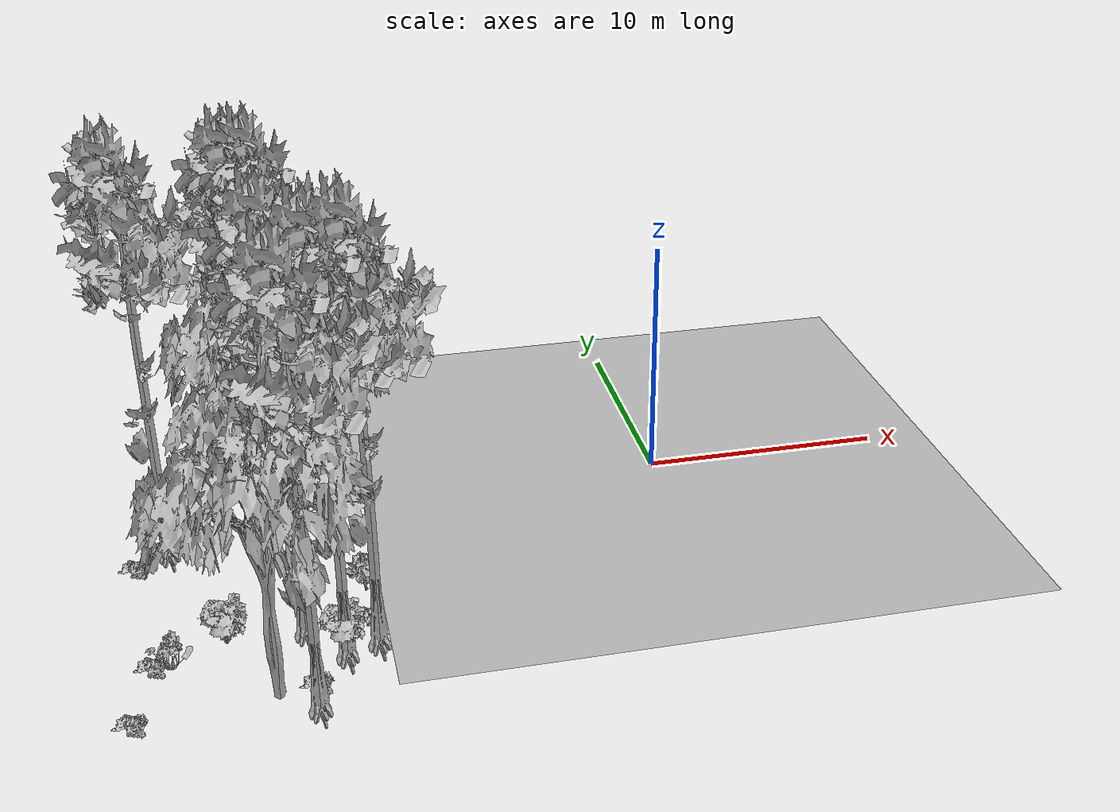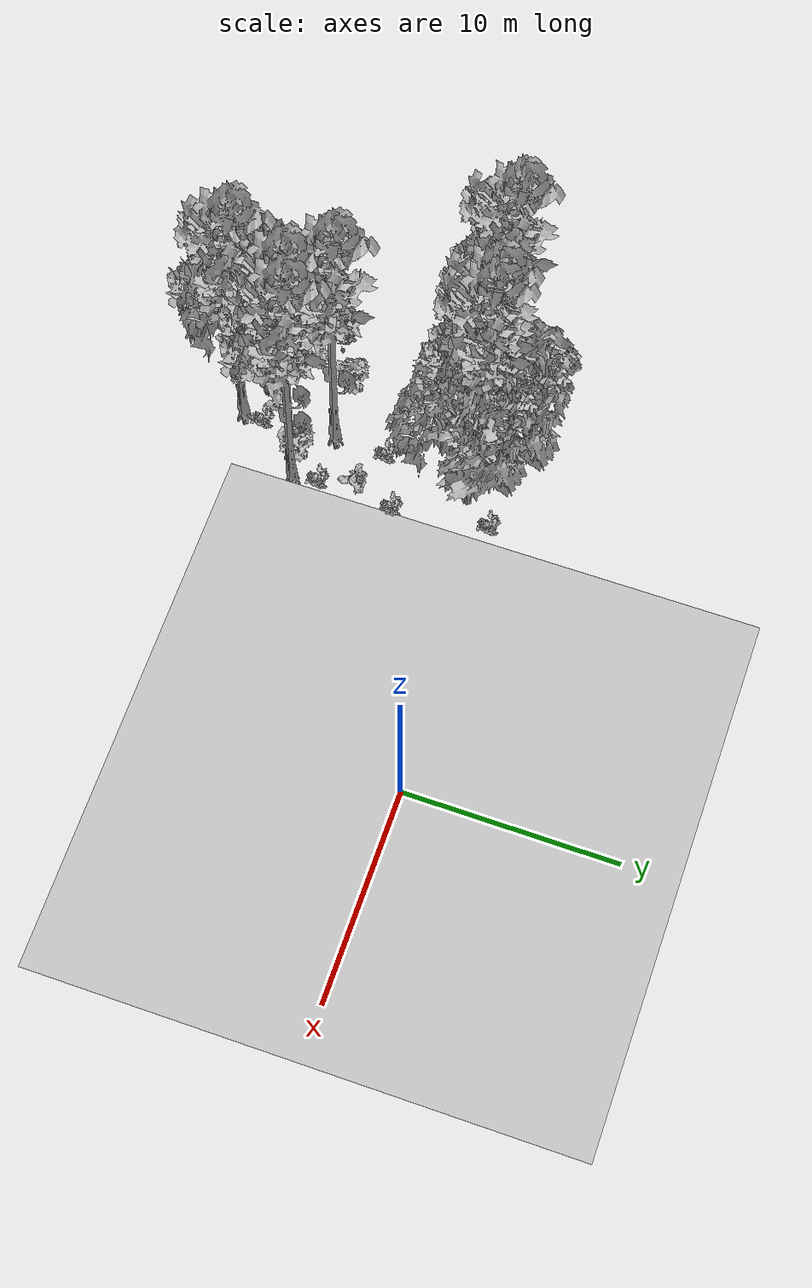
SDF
<sdf version="1.7">
 <world name="default">
  <model name="ground_plane">
   <static>1</static>
   <link name="link">
    <collision name="collision">
     <pose>-50 0 0 0 -0 0</pose>
     <geometry><plane><normal>0 0 1</normal><size>80 80</size></plane></geometry>
     <surface><contact><ode><min_depth>0.01</min_depth><max_vel>0</max_vel></ode></contact></surface>
    </collision>
    <visual name="grass">
     <cast_shadows>0</cast_shadows>
     <geometry>
      <mesh>
       <scale>0.46714285714285714 0.46714285714285714 0.1</scale>
       <uri>file://grass_plane/meshes/grass_plane.dae</uri>
      </mesh>
     </geometry>
    </visual>
   </link>
  </model>
  <model name="Tree 25">
   <static>1</static>
   <pose>-16.769617743457086 -12.314967718828854 0 1.57079 -0 0</pose>
   <link name="link">
    <collision name="collision">
     <geometry><mesh><scale>3.5 5 3.5</scale><uri>model://tree_2/meshes/tree_2.obj</uri></mesh></geometry>
    </collision>
    <visual name="visual">
     <geometry><mesh><scale>3.5 5 3.5</scale><uri>model://tree_2/meshes/tree_2.obj</uri></mesh></geometry>
    </visual>
   </link>
  </model>
  <model name="Tree 76">
   <static>1</static>
   <pose>-20.46503797163087 -2.236382372763835 0 1.57079 -0 0</pose>
   <link name="link">
    <collision name="collision">
     <geometry><mesh><scale>3.5 5 3.5</scale><uri>model://tree_9/meshes/tree_9.obj</uri></mesh></geometry>
    </collision>
    <visual name="visual">
     <geometry><mesh><scale>3.5 5 3.5</scale><uri>model://tree_9/meshes/tree_9.obj</uri></mesh></geometry>
    </visual>
   </link>
  </model>
  <model name="Tree 91">
   <static>1</static>
   <pose>-14.404852624855032 -1.7841924611341469 0 1.57079 -0 0</pose>
   <link name="link">
    <collision name="collision">
     <geometry><mesh><scale>3.5 5 3.5</scale><uri>model://tree_2/meshes/tree_2.obj</uri></mesh></geometry>
    </collision>
    <visual name="visual">
     <geometry><mesh><scale>3.5 5 3.5</scale><uri>model://tree_2/meshes/tree_2.obj</uri></mesh></geometry>
    </visual>
   </link>
  </model>
  <model name="Tree 128">
   <static>1</static>
   <pose>-15.557854230692168 -8.60469835111423 0 1.57079 -0 0</pose>
   <link name="link">
    <collision name="collision">
     <geometry><mesh><scale>3.5 5 3.5</scale><uri>model://tree_9/meshes/tree_9.obj</uri></mesh></geometry>
    </collision>
    <visual name="visual">
     <geometry><mesh><scale>3.5 5 3.5</scale><uri>model://tree_9/meshes/tree_9.obj</uri></mesh></geometry>
    </visual>
   </link>
  </model>
  <model name="Tree 222">
   <static>1</static>
   <pose>-16.023579903207974 -0.8606626134210487 0 1.57079 -0 0</pose>
   <link name="link">
    <collision name="collision">
     <geometry><mesh><scale>3.5 5 3.5</scale><uri>model://tree_2/meshes/tree_2.obj</uri></mesh></geometry>
    </collision>
    <visual name="visual">
     <geometry><mesh><scale>3.5 5 3.5</scale><uri>model://tree_2/meshes/tree_2.obj</uri></mesh></geometry>
    </visual>
   </link>
  </model>
  <model name="Tree 255">
   <static>1</static>
   <pose>-12.98085780520401 -9.775584978768741 0 1.57079 -0 0</pose>
   <link name="link">
    <collision name="collision">
     <geometry><mesh><scale>3.5 5 3.5</scale><uri>model://tree_9/meshes/tree_9.obj</uri></mesh></geometry>
    </collision>
    <visual name="visual">
     <geometry><mesh><scale>3.5 5 3.5</scale><uri>model://tree_9/meshes/tree_9.obj</uri></mesh></geometry>
    </visual>
   </link>
  </model>
  <model name="Tree 268">
   <static>1</static>
   <pose>-15.370766772227416 -13.037685718849843 0 1.57079 -0 0</pose>
   <link name="link">
    <collision name="collision">
     <geometry><mesh><scale>3.5 5 3.5</scale><uri>model://tree_9/meshes/tree_9.obj</uri></mesh></geometry>
    </collision>
    <visual name="visual">
     <geometry><mesh><scale>3.5 5 3.5</scale><uri>model://tree_9/meshes/tree_9.obj</uri></mesh></geometry>
    </visual>
   </link>
  </model>
  <model name="Tree 337">
   <static>1</static>
   <pose>-16.388541631445822 -1.8220337877680919 0 1.57079 -0 0</pose>
   <link name="link">
    <collision name="collision">
     <geometry><mesh><scale>3.5 5 3.5</scale><uri>model://tree_9/meshes/tree_9.obj</uri></mesh></geometry>
    </collision>
    <visual name="visual">
     <geometry><mesh><scale>3.5 5 3.5</scale><uri>model://tree_9/meshes/tree_9.obj</uri></mesh></geometry>
    </visual>
   </link>
  </model>
  <model name="Tree 435">
   <static>1</static>
   <pose>-15.634929680876642 -1.736867341217632 0 1.57079 -0 0</pose>
   <link name="link">
    <collision name="collision">
     <geometry><mesh><scale>3.5 5 3.5</scale><uri>model://tree_9/meshes/tree_9.obj</uri></mesh></geometry>
    </collision>
    <visual name="visual">
     <geometry><mesh><scale>3.5 5 3.5</scale><uri>model://tree_9/meshes/tree_9.obj</uri></mesh></geometry>
    </visual>
   </link>
  </model>
  <model name="Tree 520">
   <static>1</static>
   <pose>-14.184270224183507 -10.264331089370309 0 1.57079 -0 0</pose>
   <link name="link">
    <collision name="collision">
     <geometry><mesh><scale>3.5 5 3.5</scale><uri>model://tree_9/meshes/tree_9.obj</uri></mesh></geometry>
    </collision>
    <visual name="visual">
     <geometry><mesh><scale>3.5 5 3.5</scale><uri>model://tree_9/meshes/tree_9.obj</uri></mesh></geometry>
    </visual>
   </link>
  </model>
  <model name="Bush 33">
   <static>1</static>
   <pose>-20.60487466052501 -1.035735654035662 0 1.57079 -0 0</pose>
   <link name="link">
    <collision name="collision">
     <geometry><mesh><scale>2 2 2</scale><uri>model://bush_2/meshes/bush_2.obj</uri></mesh></geometry>
     <surface><contact><collide_without_contact>false</collide_without_contact></contact></surface>
    </collision>
    <visual name="visual">
     <geometry><mesh><scale>2 2 2</scale><uri>model://bush_2/meshes/bush_2.obj</uri></mesh></geometry>
    </visual>
   </link>
  </model>
  <model name="Bush 36">
   <static>1</static>
   <pose>-13.228290848950202 -8.61347316408624 0 1.57079 -0 0</pose>
   <link name="link">
    <collision name="collision">
     <geometry><mesh><scale>2 2 2</scale><uri>model://bush_2/meshes/bush_2.obj</uri></mesh></geometry>
     <surface><contact><collide_without_contact>false</collide_without_contact></contact></surface>
    </collision>
    <visual name="visual">
     <geometry><mesh><scale>2 2 2</scale><uri>model://bush_2/meshes/bush_2.obj</uri></mesh></geometry>
    </visual>
   </link>
  </model>
  <model name="Bush 93">
   <static>1</static>
   <pose>-13.536669804275057 -0.43409317305093964 0 1.57079 -0 0</pose>
   <link name="link">
    <collision name="collision">
     <geometry><mesh><scale>2 2 2</scale><uri>model://bush_2/meshes/bush_2.obj</uri></mesh></geometry>
     <surface><contact><collide_without_contact>false</collide_without_contact></contact></surface>
    </collision>
    <visual name="visual">
     <geometry><mesh><scale>2 2 2</scale><uri>model://bush_2/meshes/bush_2.obj</uri></mesh></geometry>
    </visual>
   </link>
  </model>
  <model name="Bush 95">
   <static>1</static>
   <pose>-14.240716108929952 -10.146932082971276 0 1.57079 -0 0</pose>
   <link name="link">
    <collision name="collision">
     <geometry><mesh><scale>2 2 2</scale><uri>model://bush_1/meshes/bush_1.obj</uri></mesh></geometry>
     <surface><contact><collide_without_contact>false</collide_without_contact></contact></surface>
    </collision>
    <visual name="visual">
     <geometry><mesh><scale>2 2 2</scale><uri>model://bush_1/meshes/bush_1.obj</uri></mesh></geometry>
    </visual>
   </link>
  </model>
  <model name="Bush 154">
   <static>1</static>
   <pose>-20.98838996741209 -9.920503613748124 0 1.57079 -0 0</pose>
   <link name="link">
    <collision name="collision">
     <geometry><mesh><scale>2 2 2</scale><uri>model://bush_2/meshes/bush_2.obj</uri></mesh></geometry>
     <surface><contact><collide_without_contact>false</collide_without_contact></contact></surface>
    </collision>
    <visual name="visual">
     <geometry><mesh><scale>2 2 2</scale><uri>model://bush_2/meshes/bush_2.obj</uri></mesh></geometry>
    </visual>
   </link>
  </model>
  <model name="Bush 223">
   <static>1</static>
   <pose>-21.614189368163714 -12.93465725115059 0 1.57079 -0 0</pose>
   <link name="link">
    <collision name="collision">
     <geometry><mesh><scale>2 2 2</scale><uri>model://bush_2/meshes/bush_2.obj</uri></mesh></geometry>
     <surface><contact><collide_without_contact>false</collide_without_contact></contact></surface>
    </collision>
    <visual name="visual">
     <geometry><mesh><scale>2 2 2</scale><uri>model://bush_2/meshes/bush_2.obj</uri></mesh></geometry>
    </visual>
   </link>
  </model>
  <model name="Bush 246">
   <static>1</static>
   <pose>-20.324291043030225 -9.966436400831917 0 1.57079 -0 0</pose>
   <link name="link">
    <collision name="collision">
     <geometry><mesh><scale>2 2 2</scale><uri>model://bush_4/meshes/bush_4.obj</uri></mesh></geometry>
     <surface><contact><collide_without_contact>false</collide_without_contact></contact></surface>
    </collision>
    <visual name="visual">
     <geometry><mesh><scale>2 2 2</scale><uri>model://bush_4/meshes/bush_4.obj</uri></mesh></geometry>
    </visual>
   </link>
  </model>
  <model name="Bush 261">
   <static>1</static>
   <pose>-13.141605228052843 -6.714523336485655 0 1.57079 -0 0</pose>
   <link name="link">
    <collision name="collision">
     <geometry><mesh><scale>2 2 2</scale><uri>model://bush_0/meshes/bush_0.obj</uri></mesh></geometry>
     <surface><contact><collide_without_contact>false</collide_without_contact></contact></surface>
    </collision>
    <visual name="visual">
     <geometry><mesh><scale>2 2 2</scale><uri>model://bush_0/meshes/bush_0.obj</uri></mesh></geometry>
    </visual>
   </link>
  </model>
  <model name="Bush 339">
   <static>1</static>
   <pose>-15.355236246198178 -12.077716770875444 0 1.57079 -0 0</pose>
   <link name="link">
    <collision name="collision">
     <geometry><mesh><scale>2 2 2</scale><uri>model://bush_2/meshes/bush_2.obj</uri></mesh></geometry>
     <surface><contact><collide_without_contact>false</collide_without_contact></contact></surface>
    </collision>
    <visual name="visual">
     <geometry><mesh><scale>2 2 2</scale><uri>model://bush_2/meshes/bush_2.obj</uri></mesh></geometry>
    </visual>
   </link>
  </model>
  <model name="Bush 400">
   <static>1</static>
   <pose>-12.989537465115642 -4.955242323444338 0 1.57079 -0 0</pose>
   <link name="link">
    <collision name="collision">
     <geometry><mesh><scale>2 2 2</scale><uri>model://bush_2/meshes/bush_2.obj</uri></mesh></geometry>
     <surface><contact><collide_without_contact>false</collide_without_contact></contact></surface>
    </collision>
    <visual name="visual">
     <geometry><mesh><scale>2 2 2</scale><uri>model://bush_2/meshes/bush_2.obj</uri></mesh></geometry>
    </visual>
   </link>
  </model>
  <model name="Bush 490">
   <static>1</static>
   <pose>-18.374548343250616 -8.921775278990971 0 1.57079 -0 0</pose>
   <link name="link">
    <collision name="collision">
     <geometry><mesh><scale>2 2 2</scale><uri>model://bush_1/meshes/bush_1.obj</uri></mesh></geometry>
     <surface><contact><collide_without_contact>false</collide_without_contact></contact></surface>
    </collision>
    <visual name="visual">
     <geometry><mesh><scale>2 2 2</scale><uri>model://bush_1/meshes/bush_1.obj</uri></mesh></geometry>
    </visual>
   </link>
  </model>
  <model name="Bush 538">
   <static>1</static>
   <pose>-15.491515183170414 -6.0843511438957165 0 1.57079 -0 0</pose>
   <link name="link">
    <collision name="collision">
     <geometry><mesh><scale>2 2 2</scale><uri>model://bush_2/meshes/bush_2.obj</uri></mesh></geometry>
     <surface><contact><collide_without_contact>false</collide_without_contact></contact></surface>
    </collision>
    <visual name="visual">
     <geometry><mesh><scale>2 2 2</scale><uri>model://bush_2/meshes/bush_2.obj</uri></mesh></geometry>
    </visual>
   </link>
  </model>
  <model name="Bush 632">
   <static>1</static>
   <pose>-21.721116145006015 -3.5313145551192875 0 1.57079 -0 0</pose>
   <link name="link">
    <collision name="collision">
     <geometry><mesh><scale>2 2 2</scale><uri>model://bush_2/meshes/bush_2.obj</uri></mesh></geometry>
     <surface><contact><collide_without_contact>false</collide_without_contact></contact></surface>
    </collision>
    <visual name="visual">
     <geometry><mesh><scale>2 2 2</scale><uri>model://bush_2/meshes/bush_2.obj</uri></mesh></geometry>
    </visual>
   </link>
  </model>
 </world>
</sdf>
